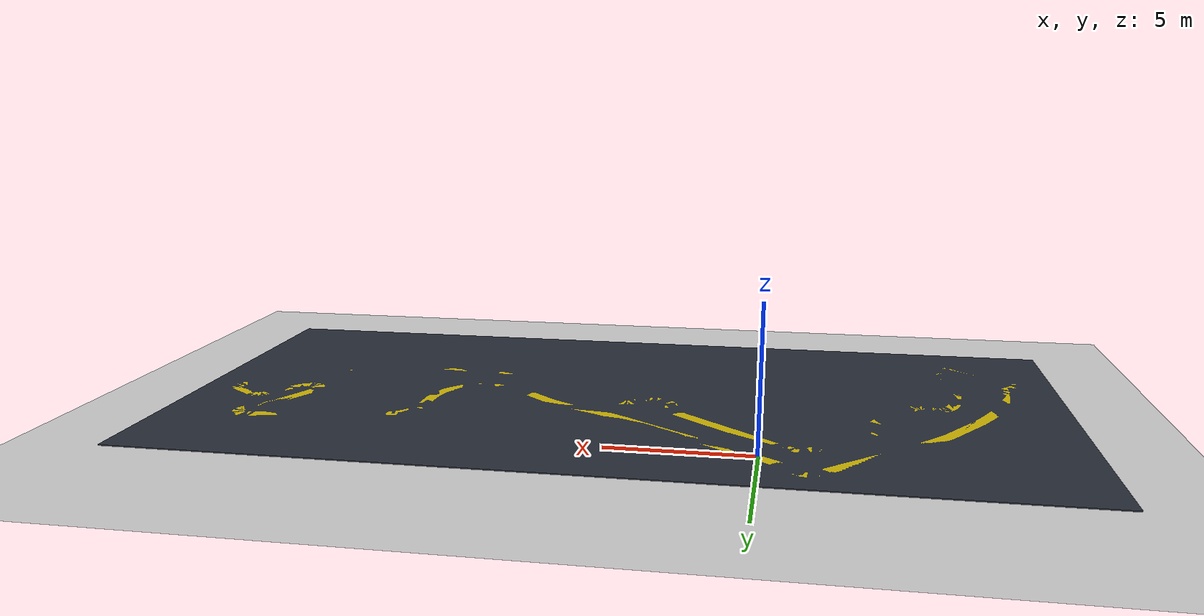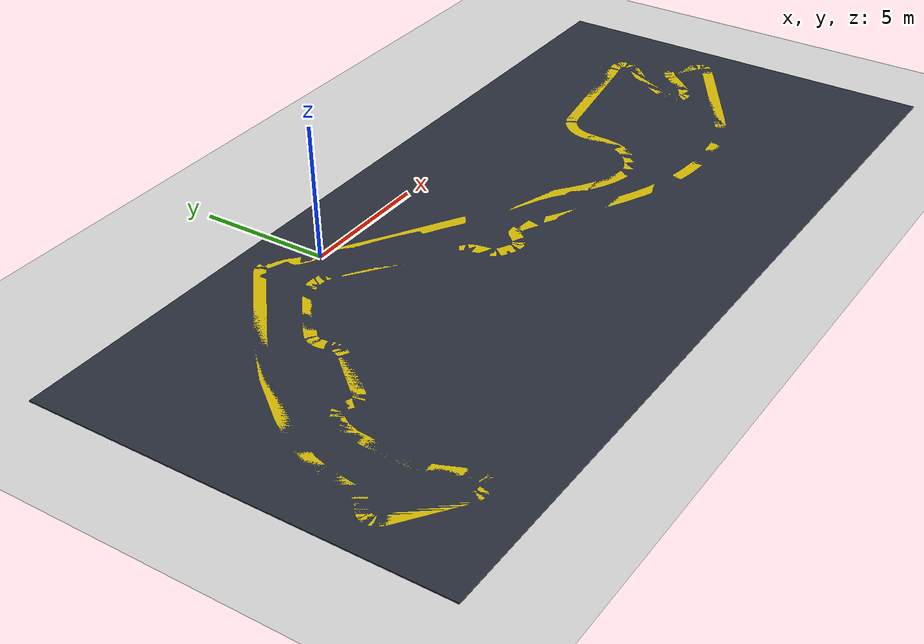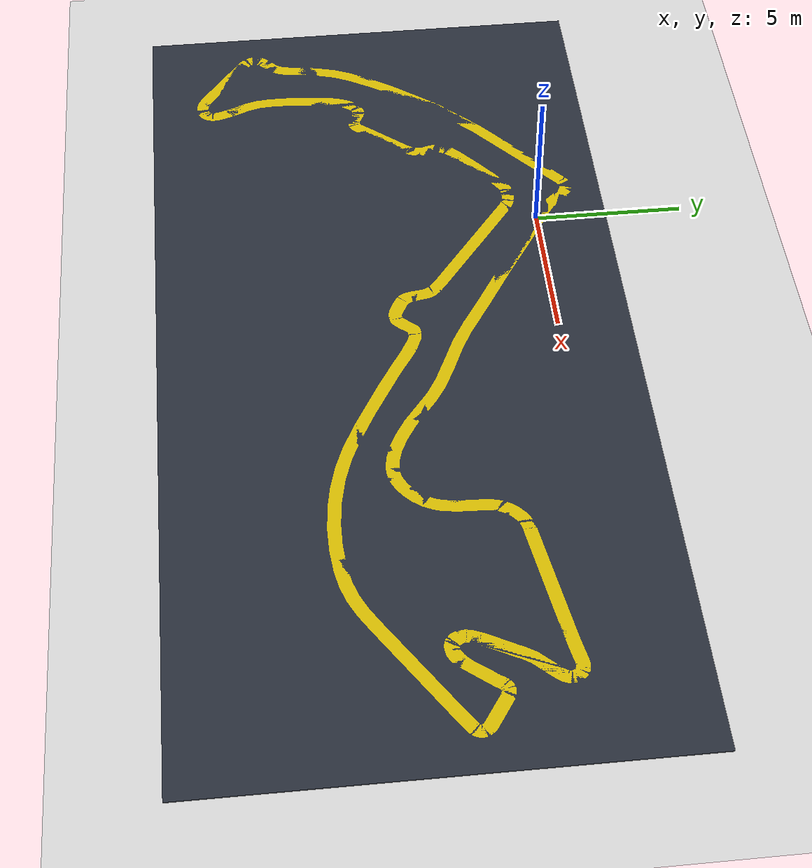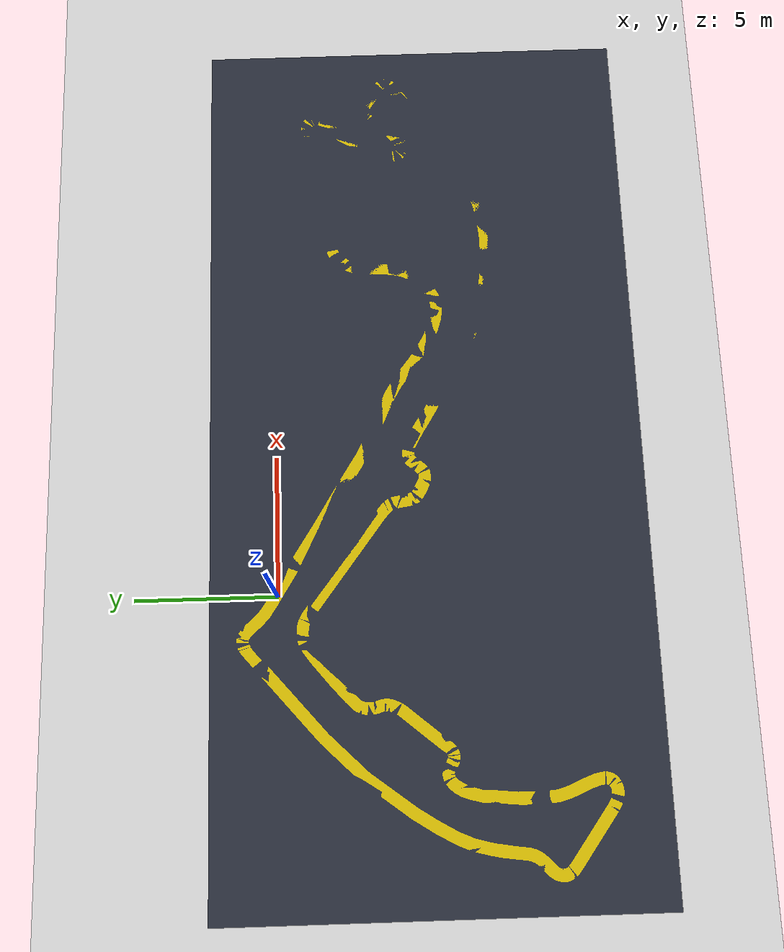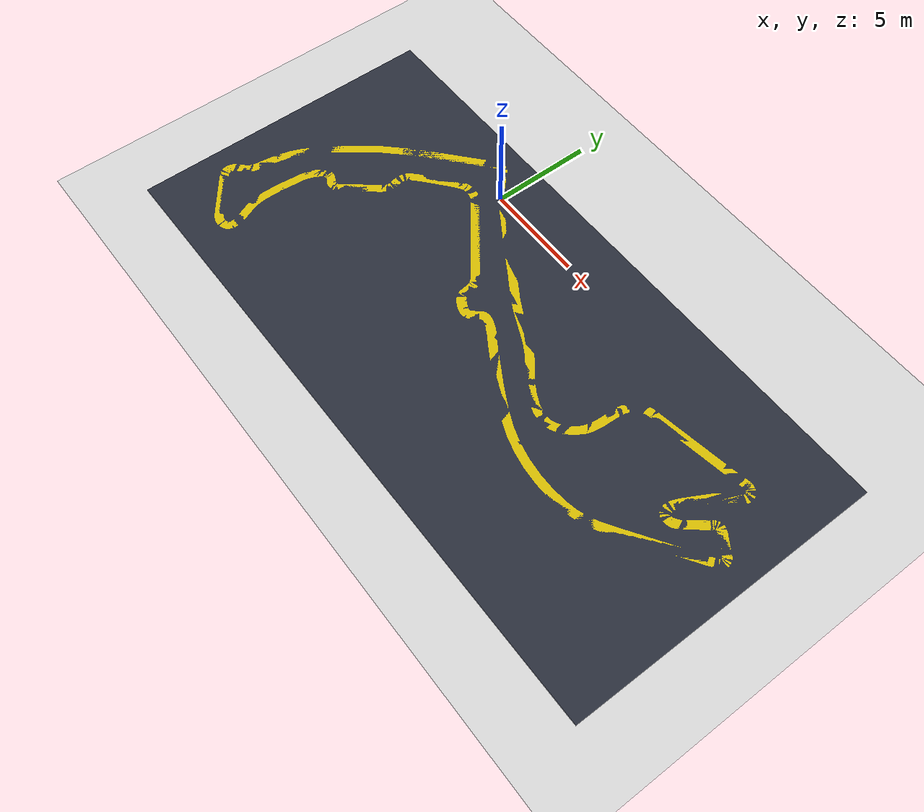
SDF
<sdf version="1.7">
 <world name="default">
  <light name="sun" type="directional">
   <pose>0 0 10 0 -0 0</pose>
   <diffuse>0.8 0.8 0.8 1</diffuse>
   <specular>0.2 0.2 0.2 1</specular>
   <attenuation>
    <range>1000</range>
    <constant>0.9</constant>
    <linear>0.01</linear>
    <quadratic>0.001</quadratic>
   </attenuation>
   <direction>-0.5 0.1 -0.9</direction>
   <spot><inner_angle>0</inner_angle><outer_angle>0</outer_angle><falloff>0</falloff></spot>
  </light>
  <model name="ground_plane">
   <static>1</static>
   <link name="link">
    <collision name="collision">
     <geometry><plane><normal>0 0 1</normal><size>100 100</size></plane></geometry>
     <surface>
      <friction>
       <ode><mu>100</mu><mu2>50</mu2><fdir1>1 0 0</fdir1><slip1>0.5</slip1><slip2>0</slip2></ode>
       <torsional>
        <coefficient>1</coefficient>
        <patch_radius>0</patch_radius>
        <surface_radius>0</surface_radius>
        <use_patch_radius>1</use_patch_radius>
        <ode><slip>0</slip></ode>
       </torsional>
      </friction>
      <bounce><restitution_coefficient>0</restitution_coefficient><threshold>1e+06</threshold></bounce>
      <contact>
       <collide_without_contact>0</collide_without_contact>
       <collide_without_contact_bitmask>1</collide_without_contact_bitmask>
       <collide_bitmask>1</collide_bitmask>
       <ode>
        <soft_cfm>0</soft_cfm>
        <soft_erp>0.2</soft_erp>
        <kp>1e+06</kp>
        <kd>100</kd>
        <max_vel>1</max_vel>
        <min_depth>0.002</min_depth>
       </ode>
       <bullet>
        <split_impulse>1</split_impulse>
        <split_impulse_penetration_threshold>-0.01</split_impulse_penetration_threshold>
        <soft_cfm>0</soft_cfm>
        <soft_erp>0.2</soft_erp>
        <kp>1e+06</kp>
        <kd>100</kd>
       </bullet>
      </contact>
     </surface>
    </collision>
    <visual name="visual">
     <cast_shadows>0</cast_shadows>
     <geometry><plane><normal>0 0 1</normal><size>100 100</size></plane></geometry>
     <material>
      <script><uri>file://media/materials/scripts/gazebo.material</uri><name>Gazebo/Grey</name></script>
     </material>
    </visual>
   </link>
  </model>
  <gravity>0 0 -9.8</gravity>
  <magnetic_field>6e-06 2.3e-05 -4.2e-05</magnetic_field>
  <atmosphere type="adiabatic"/>
  <physics type="ode">
   <max_step_size>0.001</max_step_size>
   <real_time_factor>1</real_time_factor>
   <real_time_update_rate>1000</real_time_update_rate>
  </physics>
  <scene><ambient>0.4 0.4 0.4 1</ambient><background>0.7 0.7 0.7 1</background><shadows>1</shadows></scene>
  <spherical_coordinates>
   <surface_model>EARTH_WGS84</surface_model>
   <latitude_deg>0</latitude_deg>
   <longitude_deg>0</longitude_deg>
   <elevation>0</elevation>
   <heading_deg>0</heading_deg>
  </spherical_coordinates>
  <model name="monaco">
   <link name="link">
    <kinematic>1</kinematic>
    <inertial>
     <mass>1</mass>
     <inertia><ixx>1</ixx><ixy>0</ixy><ixz>0</ixz><iyy>1</iyy><iyz>0</iyz><izz>1</izz></inertia>
    </inertial>
    <visual name="visual">
     <geometry><mesh><scale>1 1 1</scale><uri>model://monaco/meshes/monaco.dae</uri></mesh></geometry>
     <material><shader type="pixel"><normal_map>__default__</normal_map></shader></material>
    </visual>
    <collision name="collision">
     <geometry>
      <mesh><uri>/home/ubuntu/.gazebo/models//monaco/meshes/monaco.stl</uri><scale>1 1 1</scale></mesh>
     </geometry>
     <surface>
      <friction>
       <ode><mu>10</mu><mu2>50</mu2><fdir1>1 0 0</fdir1><slip1>0.5</slip1><slip2>0</slip2></ode>
       <torsional>
        <coefficient>1</coefficient>
        <patch_radius>0</patch_radius>
        <surface_radius>0</surface_radius>
        <use_patch_radius>1</use_patch_radius>
        <ode><slip>0</slip></ode>
       </torsional>
      </friction>
      <bounce><restitution_coefficient>0</restitution_coefficient><threshold>1e+06</threshold></bounce>
      <contact>
       <collide_without_contact>0</collide_without_contact>
       <collide_without_contact_bitmask>1</collide_without_contact_bitmask>
       <collide_bitmask>1</collide_bitmask>
       <ode>
        <soft_cfm>0</soft_cfm>
        <soft_erp>0.2</soft_erp>
        <kp>1e+06</kp>
        <kd>100</kd>
        <max_vel>1</max_vel>
        <min_depth>0.002</min_depth>
       </ode>
       <bullet>
        <split_impulse>1</split_impulse>
        <split_impulse_penetration_threshold>-0.01</split_impulse_penetration_threshold>
        <soft_cfm>0</soft_cfm>
        <soft_erp>0.2</soft_erp>
        <kp>1e+06</kp>
        <kd>100</kd>
       </bullet>
      </contact>
     </surface>
    </collision>
   </link>
   <static>1</static>
   <pose>-10.7367 -11.911 -0.096093 0 -0 0</pose>
  </model>
 </world>
</sdf>
